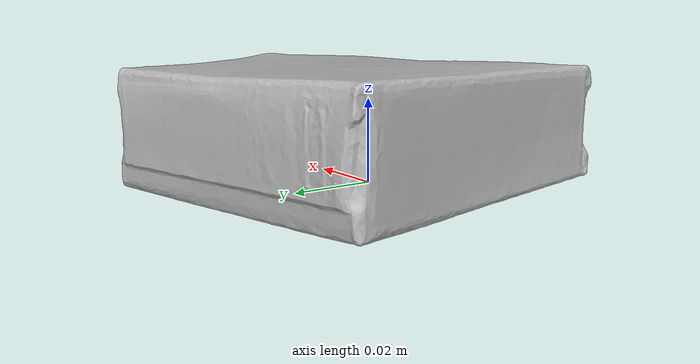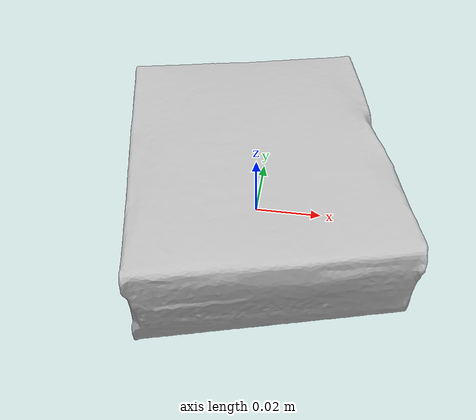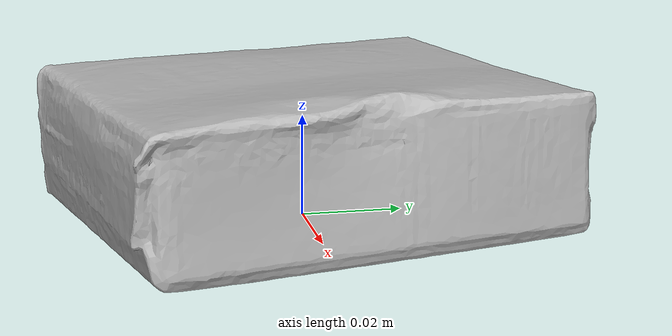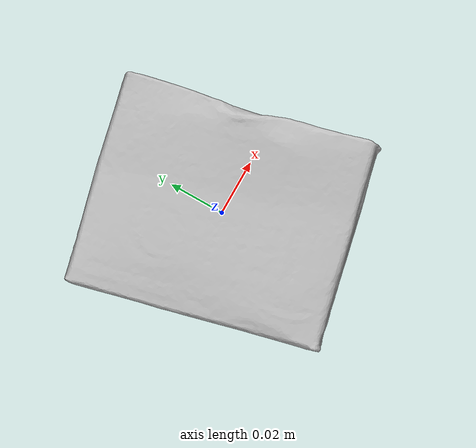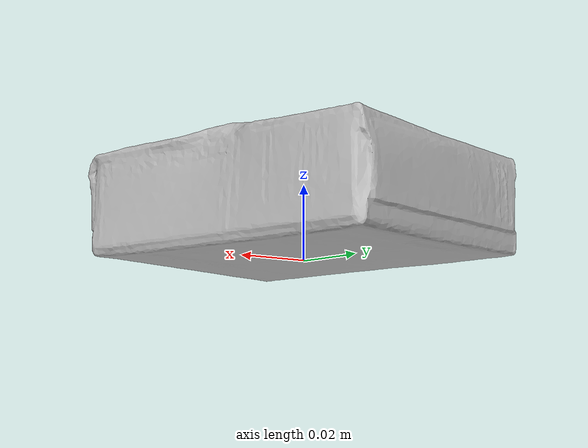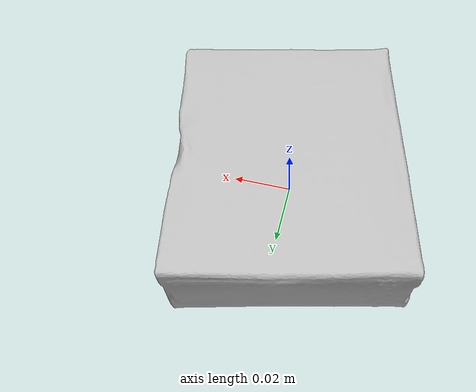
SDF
<?xml version="1.0" ?>
<sdf version='1.8'>
  <model name='ycb_009_gelatin_box'>
    <link name='body'>
      <inertial>
        <mass>0.097</mass>
        <pose>0.000245482104 0.000228796746 0.014286966 0 0 0</pose>
        <inertia>
          <ixx>6.56000902648e-05</ixx>
          <ixy>4.2674628265e-06</ixy>
          <ixz>1.31078099224e-07</ixz>
          <iyy>4.81981716727e-05</iyy>
          <iyz>-2.51763363558e-07</iyz>
          <izz>0.000101384489225</izz>
        </inertia>
      </inertial>
      <visual name='ycb_009_gelatin_box_visual'>
        <pose>0.022921 0.008089 0.000409 0 0 0</pose>
        <geometry>
          <mesh>
            <uri>model://ycb_009_gelatin_box/meshes/textured.dae</uri>
          </mesh>
        </geometry>
      </visual>
      <collision name='ycb_009_gelatin_box_collision'>
        <pose>0.022921 0.008089 0.000409 0 0 0</pose>
        <geometry>
          <mesh>
            <uri>model://ycb_009_gelatin_box/meshes/nontextured.stl</uri>
          </mesh>
        </geometry>
        <max_contacts>10</max_contacts>
        <surface>
          <contact>
            <ode>
              <kp>1e15</kp>
              <kd>1e13</kd>
            </ode>
          </contact>
        </surface>
      </collision>
    </link>
  </model>
</sdf>
